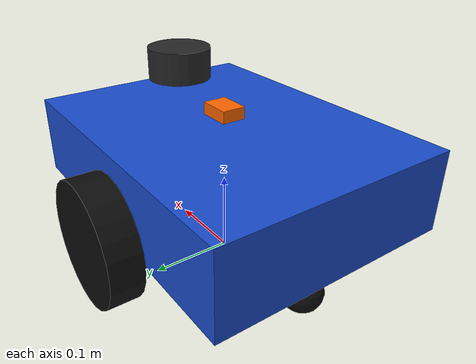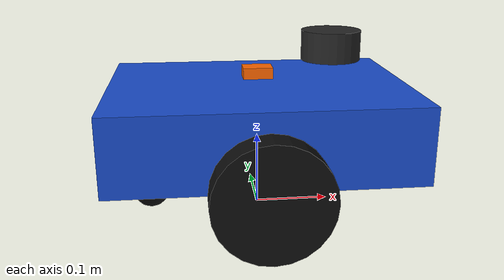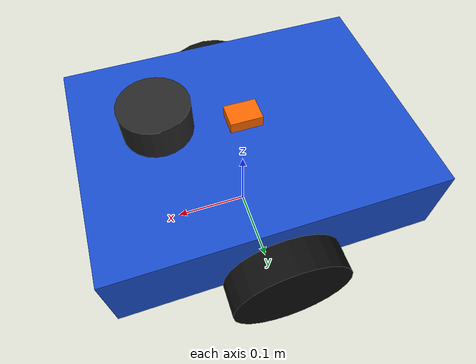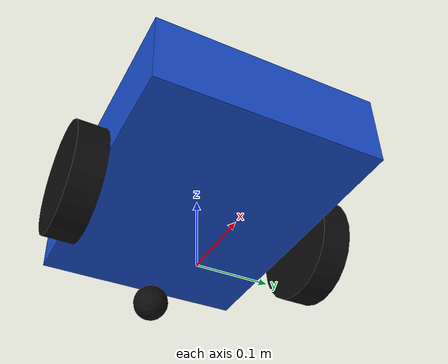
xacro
<?xml version="1.0"?>
<robot xmlns:xacro="http://www.ros.org/wiki/xacro"
       name="intern_diffbot">

  <xacro:arg name="use_fake_mcu" default="false"/>

  <material name="blue">
    <color rgba="0.10 0.30 0.80 1.0"/>
  </material>
  <!-- Ground projection used by odometry and navigation -->
  <link name="base_footprint"/>

  <joint name="base_footprint_joint" type="fixed">
    <parent link="base_footprint"/>
    <child link="base_link"/>
    <origin xyz="0 0 0.125"/>
  </joint>
  <link name="base_link">
    <visual>
      <geometry>
        <box size="0.40 0.30 0.10"/>
      </geometry>
      <material name="blue"/>
    </visual>

    <collision>
      <geometry>
        <box size="0.40 0.30 0.10"/>
      </geometry>
    </collision>

    <inertial>
      <mass value="5.0"/>
      <inertia
        ixx="0.04167" ixy="0.0" ixz="0.0"
        iyy="0.07083" iyz="0.0"
        izz="0.10417"/>
    </inertial>
  </link>
  <!-- 2D LiDAR mounted on top of the chassis -->
  <link name="lidar_link">
    <visual>
      <geometry>
        <cylinder radius="0.04" length="0.04"/>
      </geometry>
      <material name="dark_gray">
        <color rgba="0.15 0.15 0.15 1.0"/>
      </material>
    </visual>

    <collision>
      <geometry>
        <cylinder radius="0.04" length="0.04"/>
      </geometry>
    </collision>

    <inertial>
      <mass value="0.1"/>
      <inertia
        ixx="0.0000533" ixy="0.0" ixz="0.0"
        iyy="0.0000533" iyz="0.0"
        izz="0.0000800"/>
    </inertial>
  </link>

  <joint name="lidar_joint" type="fixed">
    <parent link="base_link"/>
    <child link="lidar_link"/>
    <origin xyz="0.10 0 0.10"/>
  </joint>
  <!-- Gazebo 2D LiDAR sensor -->
  <gazebo reference="lidar_link">
    <sensor name="gpu_lidar" type="gpu_lidar">
      <topic>/scan</topic>
      <update_rate>10</update_rate>
      <always_on>true</always_on>
      <visualize>true</visualize>

      <lidar>
        <scan>
          <horizontal>
            <samples>360</samples>
            <resolution>1</resolution>
            <min_angle>-3.14159</min_angle>
            <max_angle>3.14159</max_angle>
          </horizontal>

          <vertical>
            <samples>1</samples>
            <resolution>1</resolution>
            <min_angle>0.0</min_angle>
            <max_angle>0.0</max_angle>
          </vertical>
        </scan>

        <range>
          <min>0.12</min>
          <max>12.0</max>
          <resolution>0.01</resolution>
        </range>

        <noise>
          <type>gaussian</type>
          <mean>0.0</mean>
          <stddev>0.01</stddev>
        </noise>
      </lidar>
    </sensor>
  </gazebo>
  <!-- IMU mounted near the chassis center -->
  <link name="imu_link">
    <visual>
      <geometry>
        <box size="0.04 0.03 0.015"/>
      </geometry>
      <material name="orange">
        <color rgba="1.0 0.4 0.0 1.0"/>
      </material>
    </visual>

    <collision>
      <geometry>
        <box size="0.04 0.03 0.015"/>
      </geometry>
    </collision>

    <inertial>
      <mass value="0.02"/>
      <inertia
        ixx="0.000001875" ixy="0.0" ixz="0.0"
        iyy="0.000003042" iyz="0.0"
        izz="0.000004167"/>
    </inertial>
  </link>

  <joint name="imu_joint" type="fixed">
    <parent link="base_link"/>
    <child link="imu_link"/>
    <origin xyz="0 0 0.065"/>
  </joint>
  <!-- Gazebo IMU sensor -->
  <gazebo reference="imu_link">
    <sensor name="imu_sensor" type="imu">
      <topic>/imu</topic>
      <update_rate>100</update_rate>
      <always_on>true</always_on>
      <visualize>false</visualize>
    </sensor>
  </gazebo>

  <!-- Differential-drive wheels -->
  <xacro:macro name="drive_wheel" params="side y_offset">
    <link name="${side}_wheel_link">
      <visual>
        <origin rpy="1.5708 0 0"/>
        <geometry>
          <cylinder radius="0.075" length="0.04"/>
        </geometry>
        <material name="black">
          <color rgba="0.05 0.05 0.05 1.0"/>
        </material>
      </visual>

      <collision>
        <origin rpy="1.5708 0 0"/>
        <geometry>
          <cylinder radius="0.075" length="0.04"/>
        </geometry>
      </collision>

      <inertial>
        <mass value="0.5"/>
        <inertia
          ixx="0.000754" ixy="0.0" ixz="0.0"
          iyy="0.001406" iyz="0.0"
          izz="0.000754"/>
      </inertial>
    </link>

    <joint name="${side}_wheel_joint" type="continuous">
      <parent link="base_link"/>
      <child link="${side}_wheel_link"/>
      <origin xyz="0 ${y_offset} -0.05"/>
      <axis xyz="0 1 0"/>
      <dynamics damping="0.1" friction="0.1"/>
    </joint>
  </xacro:macro>

  <xacro:drive_wheel side="left"  y_offset="0.17"/>
  <xacro:drive_wheel side="right" y_offset="-0.17"/>
  <!-- Rear passive caster -->
  <link name="caster_link">
    <visual>
      <geometry>
        <sphere radius="0.025"/>
      </geometry>
      <material name="black"/>
    </visual>

    <collision>
      <geometry>
        <sphere radius="0.025"/>
      </geometry>
    </collision>

    <inertial>
      <mass value="0.1"/>
      <inertia
        ixx="0.000025" ixy="0.0" ixz="0.0"
        iyy="0.000025" iyz="0.0"
        izz="0.000025"/>
    </inertial>
  </link>

  <joint name="caster_joint" type="fixed">
    <parent link="base_link"/>
    <child link="caster_link"/>
    <origin xyz="-0.15 0 -0.10"/>
  </joint>
  <!-- Gazebo owns the joints only in the existing physics-simulation path. -->
  <xacro:unless value="$(arg use_fake_mcu)">
    <ros2_control name="GazeboSimSystem" type="system">
      <hardware>
        <plugin>gz_ros2_control/GazeboSimSystem</plugin>
      </hardware>

      <joint name="left_wheel_joint">
        <command_interface name="velocity">
          <param name="min">-10.0</param>
          <param name="max">10.0</param>
        </command_interface>
        <state_interface name="position"/>
        <state_interface name="velocity"/>
      </joint>

      <joint name="right_wheel_joint">
        <command_interface name="velocity">
          <param name="min">-10.0</param>
          <param name="max">10.0</param>
        </command_interface>
        <state_interface name="position"/>
        <state_interface name="velocity"/>
      </joint>
    </ros2_control>

    <gazebo>
      <plugin
        filename="gz_ros2_control-system"
        name="gz_ros2_control::GazeboSimROS2ControlPlugin">
              <parameters>$(env HOME)/robot_ws/src/diffbot_controllers.yaml</parameters>
      </plugin>
    </gazebo>
  </xacro:unless>

  <!-- Standalone M8 path: no Gazebo control plugin may bypass this boundary. -->
  <xacro:if value="$(arg use_fake_mcu)">
    <ros2_control name="DiffbotMcuSystem" type="system">
      <hardware>
        <plugin>diffbot_hardware/DiffbotSystemHardware</plugin>
        <param name="transport_plugin">diffbot_hardware/FakeMcuTransport</param>
        <param name="left_wheel_name">left_wheel_joint</param>
        <param name="right_wheel_name">right_wheel_joint</param>
        <param name="encoder_counts_per_revolution">2048</param>
        <param name="command_validity_ms">100</param>
        <param name="state_timeout_ms">200</param>
        <param name="activation_timeout_ms">500</param>
        <param name="mcu_state_topic">/mcu/state</param>
      </hardware>

      <joint name="left_wheel_joint">
        <command_interface name="velocity">
          <param name="min">-10.0</param>
          <param name="max">10.0</param>
        </command_interface>
        <state_interface name="position"/>
        <state_interface name="velocity"/>
      </joint>

      <joint name="right_wheel_joint">
        <command_interface name="velocity">
          <param name="min">-10.0</param>
          <param name="max">10.0</param>
        </command_interface>
        <state_interface name="position"/>
        <state_interface name="velocity"/>
      </joint>
    </ros2_control>
  </xacro:if>
</robot>
